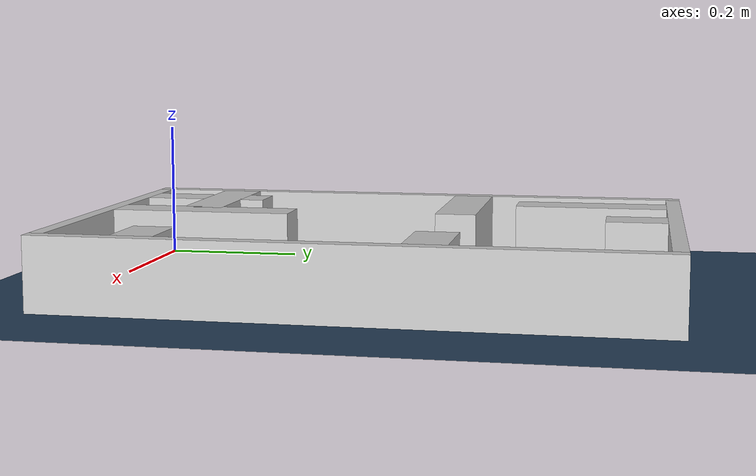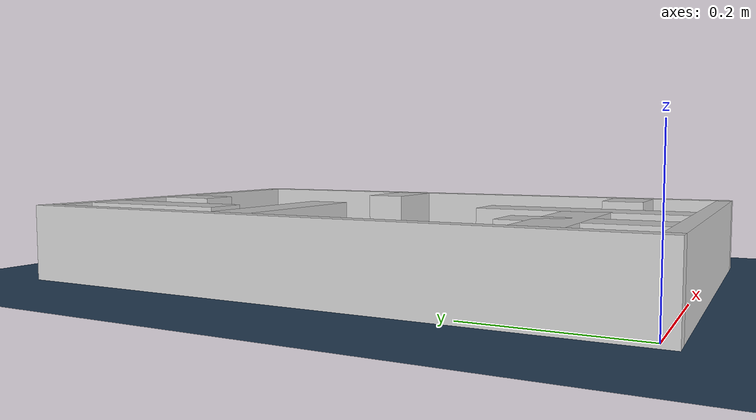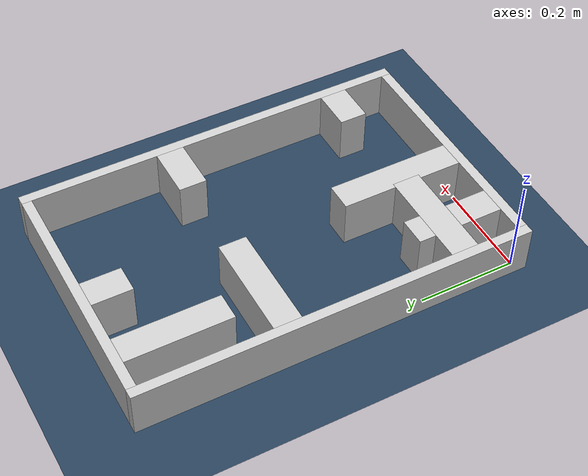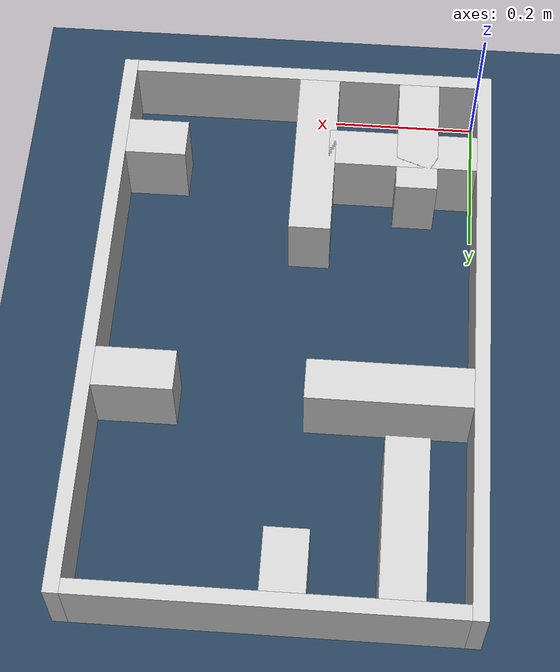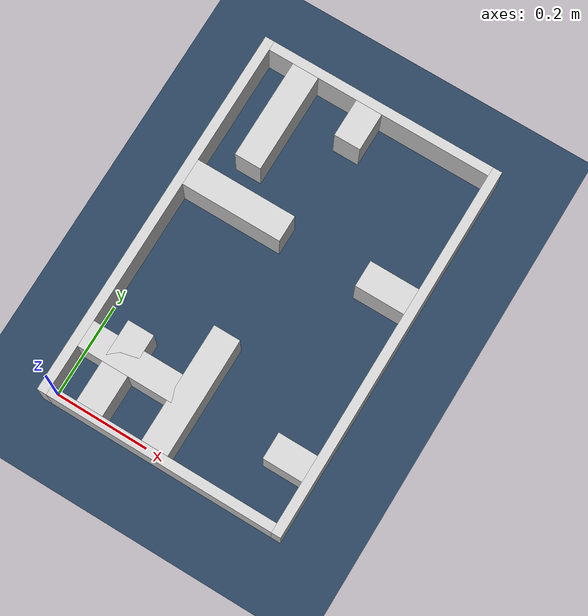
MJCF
<?xml version="1.0" ?>
<mujoco model="generated_real_template">
  <compiler angle="degree"/>
  <option timestep="0.002" integrator="implicitfast" iterations="100" cone="elliptic"/>
  <default>
    <geom density="1"/>
  </default>
  <asset>
    <texture builtin="gradient" height="3072" rgb1="0.3 0.5 0.7" rgb2="0 0 0" type="skybox" width="512"/>
    <texture builtin="checker" height="300" mark="edge" markrgb="0.8 0.8 0.8" name="groundplane" rgb1="0.2 0.3 0.4" rgb2="0.1 0.2 0.3" type="2d" width="300"/>
    <material name="groundplane" reflectance="0.2" texrepeat="5 5" texture="groundplane" texuniform="true"/>
  </asset>
  <worldbody>
    <light dir="0 0 -1" directional="true" pos="0 0 1.5"/>
    <geom name="floor" type="plane" condim="4" friction="0.5 0.005 0.001" material="groundplane" size="0 0 0.05"/>
    <body name="walls">
      <geom name="wall_boundary_left" type="box" condim="4" friction="1.0 0.005 0.0001" rgba="0.8 0.8 0.8 1" pos="-0.010000 0.387500 0.050000" euler="0 0 0.000000" size="0.010000 0.407500 0.050000"/>
      <geom name="wall_boundary_right" type="box" condim="4" friction="1.0 0.005 0.0001" rgba="0.8 0.8 0.8 1" pos="0.500000 0.387500 0.050000" euler="0 0 0.000000" size="0.010000 0.407500 0.050000"/>
      <geom name="wall_boundary_bottom" type="box" condim="4" friction="1.0 0.005 0.0001" rgba="0.8 0.8 0.8 1" pos="0.245000 -0.010000 0.050000" euler="0 0 0.000000" size="0.245000 0.010000 0.050000"/>
      <geom name="wall_boundary_top" type="box" condim="4" friction="1.0 0.005 0.0001" rgba="0.8 0.8 0.8 1" pos="0.245000 0.785000 0.050000" euler="0 0 0.000000" size="0.245000 0.010000 0.050000"/>
      <geom name="wall_inner_1_1" type="box" condim="4" friction="1.0 0.005 0.0001" rgba="0.8 0.8 0.8 1" pos="0.225688 0.127597 0.050000" euler="0 0 90.000000" size="0.127597 0.028500 0.050000"/>
      <geom name="wall_inner_1_2" type="box" condim="4" friction="1.0 0.005 0.0001" rgba="0.8 0.8 0.8 1" pos="0.225688 0.733735 0.050000" euler="0 0 90.000000" size="0.041265 0.028500 0.050000"/>
      <geom name="wall_inner_2_1" type="box" condim="4" friction="1.0 0.005 0.0001" rgba="0.8 0.8 0.8 1" pos="0.108384 0.485844 0.050000" euler="0 0 0.000000" size="0.108384 0.028500 0.050000"/>
      <geom name="wall_inner_2_2" type="box" condim="4" friction="1.0 0.005 0.0001" rgba="0.8 0.8 0.8 1" pos="0.436953 0.485844 0.050000" euler="0 0 0.000000" size="0.053047 0.028500 0.050000"/>
      <geom name="wall_inner_3_1" type="box" condim="4" friction="1.0 0.005 0.0001" rgba="0.8 0.8 0.8 1" pos="0.082939 0.089773 0.050000" euler="0 0 90.000000" size="0.089773 0.028500 0.050000"/>
      <geom name="wall_inner_3_2" type="box" condim="4" friction="1.0 0.005 0.0001" rgba="0.8 0.8 0.8 1" pos="0.082939 0.667679 0.050000" euler="0 0 90.000000" size="0.107321 0.028500 0.050000"/>
      <geom name="wall_inner_4_1" type="box" condim="4" friction="1.0 0.005 0.0001" rgba="0.8 0.8 0.8 1" pos="0.103237 0.116370 0.050000" euler="0 0 0.000000" size="0.103237 0.028500 0.050000"/>
      <geom name="wall_inner_4_2" type="box" condim="4" friction="1.0 0.005 0.0001" rgba="0.8 0.8 0.8 1" pos="0.447943 0.116370 0.050000" euler="0 0 0.000000" size="0.042057 0.028500 0.050000"/>
    </body>
  </worldbody>
</mujoco>
